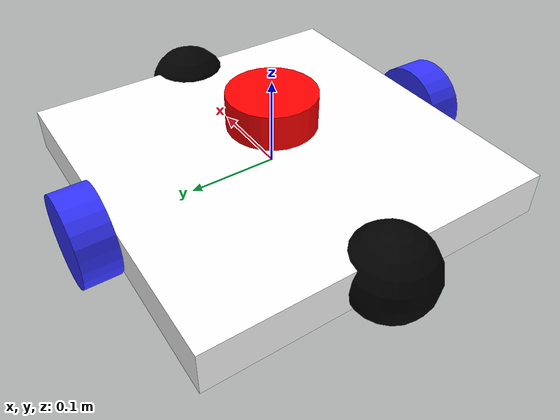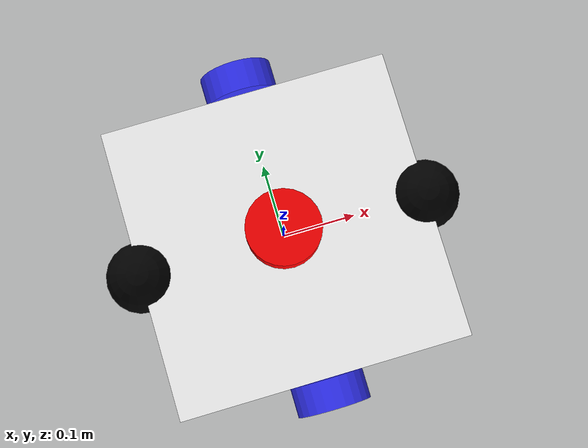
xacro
<?xml version="1.0"?>
<robot xmlns:xacro="http://www.ros.org/wiki/xacro" name="hotel_robot">

    <!-- Example link -->
    <xacro:include filename="properties.xacro"/>
    <xacro:include filename="robot_core.xacro"/>
    <xacro:include filename="lidar.xacro"/>
    <xacro:include filename="ros2_control.xacro"/>
    <xacro:include filename="imu.xacro"/>

</robot>

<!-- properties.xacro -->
<robot xmlns:xacro="http://www.ros.org/wiki/xacro">
    <!-- Color Definitions -->
    <material name="white">
        <color rgba= "1 1 1 1"/>
    </material>

    <material name="orange">
        <color rgba= "1 0.3 0.1 1"/>
    </material>

    <material name="blue">
        <color rgba= "0.2 0.2 1 1"/>
    </material>

    <material name="Terra">
        <color rgba= "1 0.25 0 1"/>
    </material>

    <material name="black">
        <color rgba= "0 0 0 1"/>
    </material>

    <material name="red">
        <color rgba= "1 0 0 1"/>
    </material>

</robot>

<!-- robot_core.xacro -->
<robot xmlns:xacro="http://www.ros.org/wiki/xacro">

    <!-- Example link -->
    <xacro:include filename="inertial_macros.xacro"/>

    <xacro:property name="rad_w" value="0.05"/>
    <xacro:property name="le_w" value="0.04"/>
    <xacro:property name="ly" value="0.4"/>
    <xacro:property name="lx" value="0.4"/>
    <xacro:property name="lz" value="0.05"/>
    <xacro:property name="chassis_mass" value="5.8"/>
    <xacro:property name="wheel_mass" value="0.5"/>

    <!-- Example link -->
    <link name="base_link">
    </link>

    <joint name="base_link_joint" type="fixed">
        <parent link="base_link"/>
        <child link="chassis"/>
        <origin xyz="0 0 0"/>
    </joint>

    <!-- chassis link -->
    <link name="chassis">
        <visual>
            <origin xyz="0 0 0"/>
            <geometry>
                <box size="${lx} ${ly} ${lz}"/>
            </geometry>
            <material name="white"/>
        </visual>
        <collision>
            <origin xyz="0 0 0"/>
            <geometry>
               <box size="${lx} ${ly} ${lz}"/>
            </geometry>
        </collision>
        <xacro:inertial_box mass="${chassis_mass}" x="${lx}" y="${ly}" z="${lz}">
            <origin xyz="0 0 0" rpy="0 0 0"/>
        </xacro:inertial_box>
    </link>

    <!-- left wheel joint -->
    <joint name="left_wheel_joint" type="continuous">
        <parent link="chassis"/>
        <child link="left_wheel"/>
        <origin xyz="0 ${ly/2+le_w/2} 0.0" rpy="-${pi/2} 0 0"/>
        <axis xyz="0 0 1"/>
        <dynamics damping="0.2" friction="0.0"/>
    </joint>

    <!-- left wheel link -->
    <link name="left_wheel">
        <visual>
            <geometry>
                <cylinder radius="${rad_w}" length="${le_w}"/>
            </geometry>
            <material name="blue"/>
        </visual>
        <collision>
            <geometry>
                  <sphere radius="${rad_w}" />
            </geometry>

        </collision>
        <xacro:inertial_cylinder mass="${wheel_mass}" length="${le_w}" radius="${rad_w}">
            <origin xyz="0 0 0" rpy="0 0 0"/>
        </xacro:inertial_cylinder>
    </link>

    <!-- right wheel joint -->
    <joint name="right_wheel_joint" type="continuous">
        <parent link="chassis"/>
        <child link="right_wheel"/>
        <origin xyz="0 -${ly/2+le_w/2} 0.0" rpy="${pi/2} 0 0"/>
        <axis xyz="0 0 -1"/>
        <dynamics damping="0.2" friction="0.0"/>
    </joint>

    <!-- right wheel link -->
    <link name="right_wheel">
        <visual>
            <geometry>
                <cylinder radius="${rad_w}" length="${le_w}"/>
            </geometry>
            <material name="blue"/>
        </visual>
        <collision>
            <geometry>
                  <sphere radius="${rad_w}" />
            </geometry>

        </collision>
        <xacro:inertial_cylinder mass="${wheel_mass}" length="${le_w}" radius="${rad_w}">
            <origin xyz="0 0 0" rpy="0 0 0"/>
        </xacro:inertial_cylinder>
    </link>

    <!-- caster wheel joint -->
    <joint name="caster_front_wheel_joint" type="fixed">
        <parent link="chassis"/>
        <child link="caster_front_wheel"/>
        <origin xyz="${lx/2} 0 0.0"/>
    </joint>

    <!-- left wheel link -->
    <link name="caster_front_wheel">
        <visual>
            <geometry>
                <sphere radius="0.049"/>
            </geometry>
            <material name="black"/>
        </visual>
        <collision>
            <geometry>
                <sphere radius="0.049"/>
            </geometry>
            <surface>
                <friction>
                <ode>
                    <mu>0.01</mu>
                    <mu2>0.01</mu2>
                </ode>
                </friction>
            </surface>
        </collision>
        <xacro:inertial_sphere mass="0.1" radius="0.049">
            <origin xyz="0 0 0" rpy="0 0 0"/>
        </xacro:inertial_sphere>
    </link>

     <!-- caster wheel joint -->
    <joint name="caster_rear_wheel_joint" type="fixed">
        <parent link="chassis"/>
        <child link="caster_rear_wheel"/>
        <origin xyz="${-lx/2} 0 0.0"/>
    </joint>

    <!-- left wheel link -->
    <link name="caster_rear_wheel">
        <visual>
            <geometry>
                <sphere radius="0.049"/>
            </geometry>
            <material name="black"/>
        </visual>
        <collision>
            <geometry>
                <sphere radius="0.049"/>
            </geometry>
            <surface>
                <friction>
                <ode>
                    <mu>0.01</mu>
                    <mu2>0.01</mu2>
                </ode>
                </friction>
            </surface>
        </collision>
        <xacro:inertial_sphere mass="0.1" radius="0.049">
            <origin xyz="0 0 0" rpy="0 0 0"/>
        </xacro:inertial_sphere>
    </link>

    <gazebo reference="left_wheel">
        <mu1>2.0</mu1>
        <mu2>2.0</mu2>
    </gazebo>

    <gazebo reference="right_wheel">
        <mu1>2.0</mu1>
        <mu2>2.0</mu2>
    </gazebo>

    <gazebo reference="caster_rear_wheel">
        <mu1>2.0</mu1>
        <mu2>2.0</mu2>
    </gazebo>

    <gazebo reference="caster_front_wheel">
        <mu1>2.0</mu1>
        <mu2>2.0</mu2>
    </gazebo>

</robot>

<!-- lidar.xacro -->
<robot xmlns:xacro="http://www.ros.org/wiki/xacro" >

    <!-- Lidar link -->
    <link name="lidar_link">
         <visual>
            <geometry>
                <cylinder radius="${rad_w}" length="${le_w}"/>
            </geometry>
            <material name="red"/>
        </visual>
        <collision>
            <geometry>
                <cylinder radius="${rad_w}" length="${le_w}"/>
            </geometry>
        </collision>
        <xacro:inertial_cylinder mass="0.1" length="${le_w}" radius="${rad_w}">
            <origin xyz="0 0 0" rpy="0 0 0"/>
        </xacro:inertial_cylinder>
    </link>

    <joint name="lidar_chassis_joint" type="fixed">
        <parent link="chassis"/>
        <child link="lidar_link"/>
        <origin xyz="0 0 ${le_w/2+lz}" rpy="0 0 0"/>
    </joint>

    <gazebo reference="lidar_link">
    <sensor name="lidar" type="gpu_lidar">
        <always_on>true</always_on>
        <update_rate>10</update_rate>
        <visualize>true</visualize>
        <topic>scan</topic>
        <gz_frame_id>lidar_link</gz_frame_id>

        <lidar>
        <scan>
            <horizontal>
            <samples>720</samples>
            <min_angle>-3.14159</min_angle>
            <max_angle>3.14159</max_angle>
            </horizontal>
        </scan>
        <range>
            <min>0.12</min>
            <max>12.0</max>
        </range>
        </lidar>
    </sensor>
    </gazebo>

</robot>

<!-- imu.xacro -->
<robot xmlns:xacro="http://www.ros.org/wiki/xacro">

    <!--  GZ-SIM IMU SYSTEM (attached to the robot model)       -->
    <!--  Esto evita modificar el world.sdf                     -->
    <gazebo>
        <plugin filename="gz-sim-imu-system"
                name="gz::sim::systems::Imu"/>
    </gazebo>

    <!-- IMU LINK                      -->

    <link name="imu_link">
        <visual>
            <geometry>
                <box size="0.02 0.02 0.01"/>
            </geometry>
            <material name="blue">
                <color rgba="0 0 1 1"/>
            </material>
        </visual>

        <collision>
            <geometry>
                <box size="0.02 0.02 0.01"/>
            </geometry>
        </collision>

        <!-- Usamos la macro de inercia que ya tienes -->
        <xacro:inertial_box mass="0.02" x="0.02" y="0.02" z="0.01">
            <origin xyz="0 0 0" rpy="0 0 0"/>
        </xacro:inertial_box>
    </link>

    <!-- IMU JOINT (fijo al chassis)   -->

    <joint name="imu_joint" type="fixed">
        <parent link="chassis"/>
        <child link="imu_link"/>
        <!-- Encima del robot -->
        <origin xyz="0 0 ${lz/2 + 0.02}" rpy="0 0 0"/>
    </joint>

    <!-- GAZEBO IMU SENSOR             -->

    <gazebo reference="imu_link">
        <sensor name="imu_sensor" type="imu">
            <always_on>true</always_on>
            <update_rate>100</update_rate>
            <visualize>false</visualize>

            <!-- Topic en Gazebo Transport (luego lo puenteas a ROS) -->
            <topic>imu</topic>

            <imu>
                <angular_velocity>
                    <x>
                        <noise type="gaussian">
                            <mean>0.0</mean>
                            <stddev>0.0002</stddev>
                        </noise>
                    </x>
                    <y>
                        <noise type="gaussian">
                            <mean>0.0</mean>
                            <stddev>0.0002</stddev>
                        </noise>
                    </y>
                    <z>
                        <noise type="gaussian">
                            <mean>0.0</mean>
                            <stddev>0.0002</stddev>
                        </noise>
                    </z>
                </angular_velocity>

                <linear_acceleration>
                    <x>
                        <noise type="gaussian">
                            <mean>0.0</mean>
                            <stddev>0.017</stddev>
                        </noise>
                    </x>
                    <y>
                        <noise type="gaussian">
                            <mean>0.0</mean>
                            <stddev>0.017</stddev>
                        </noise>
                    </y>
                    <z>
                        <noise type="gaussian">
                            <mean>0.0</mean>
                            <stddev>0.017</stddev>
                        </noise>
                    </z>
                </linear_acceleration>
            </imu>

        </sensor>
    </gazebo>

</robot>
